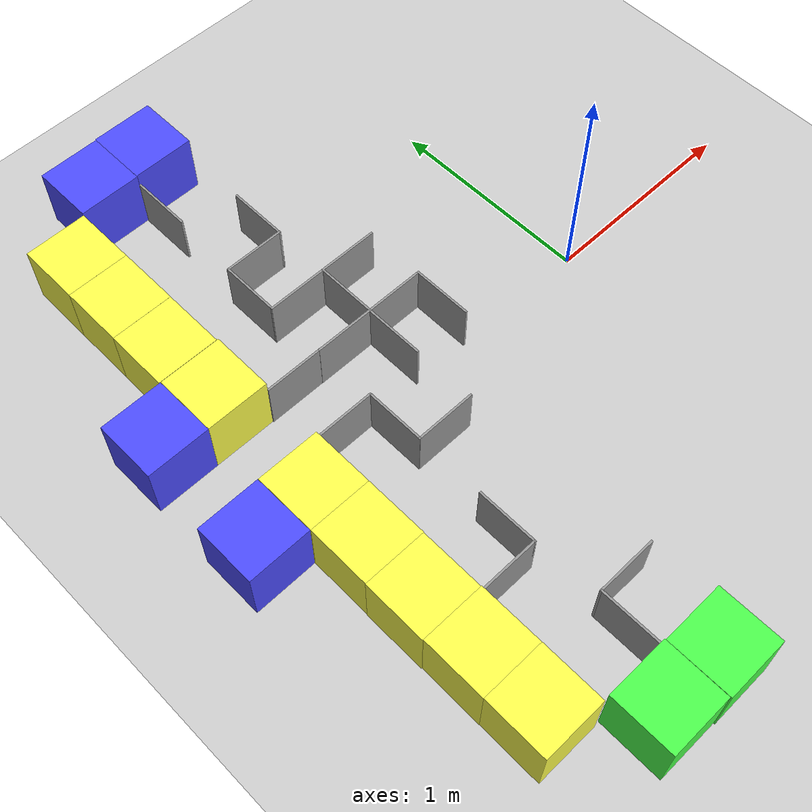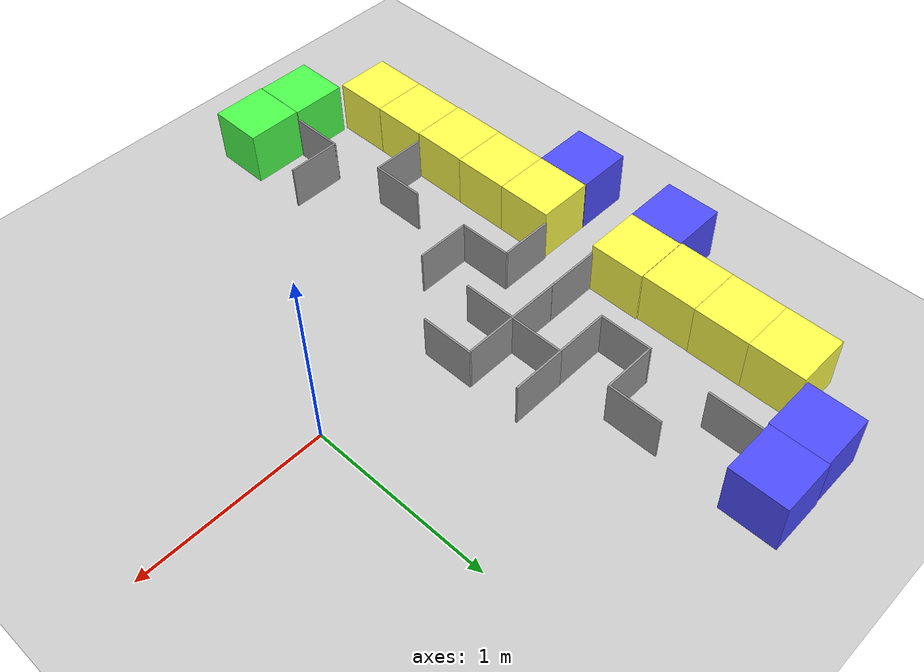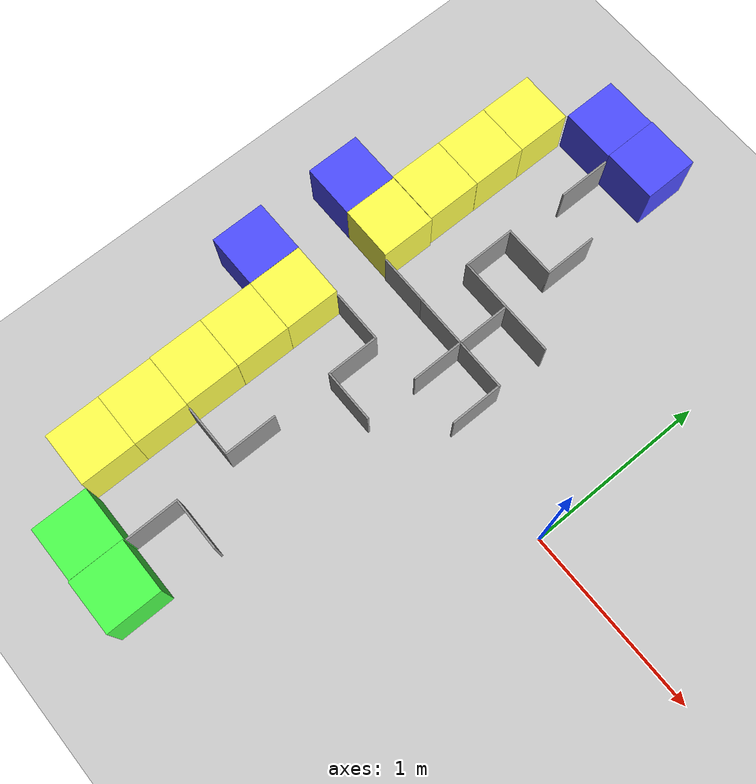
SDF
<sdf version="1.6">
 <world name="default">
  <model name="ground_plane">
   <static>1</static>
   <link name="link">
    <collision name="collision">
     <geometry><plane><normal>0 0 1</normal><size>100 100</size></plane></geometry>
     <surface><friction><ode><mu>100</mu><mu2>50</mu2></ode></friction></surface>
    </collision>
    <visual name="visual">
     <cast_shadows>0</cast_shadows>
     <geometry><plane><normal>0 0 1</normal><size>100 100</size></plane></geometry>
     <material>
      <script><uri>file://media/materials/scripts/gazebo.material</uri><name>Gazebo/Grey</name></script>
     </material>
    </visual>
   </link>
  </model>
  <model name="Box_Yellow">
   <link name="link_0">
    <inertial>
     <mass>1</mass>
     <inertia>
      <ixx>0.166667</ixx>
      <ixy>0</ixy>
      <ixz>0</ixz>
      <iyy>0.166667</iyy>
      <iyz>0</iyz>
      <izz>0.166667</izz>
     </inertia>
    </inertial>
    <visual name="visual">
     <geometry><box><size>0.3 0.3 0.3</size></box></geometry>
     <material>
      <lighting>1</lighting>
      <script><uri>file://media/materials/scripts/gazebo.material</uri><name>Gazebo/Grey</name></script>
      <ambient>1 1 0.3 1</ambient>
      <diffuse>0.7 0.7 0.7 1</diffuse>
      <specular>0.01 0.01 0.01 1</specular>
      <emissive>0 0 0 1</emissive>
      <shader type="vertex"><normal_map>__default__</normal_map></shader>
     </material>
    </visual>
    <collision name="collision">
     <geometry><box><size>0.3 0.3 0.3</size></box></geometry>
     <surface>
      <friction>
       <ode><mu>1</mu><mu2>1</mu2><fdir1>0 0 0</fdir1><slip1>0</slip1><slip2>0</slip2></ode>
       <torsional>
        <coefficient>1</coefficient>
        <patch_radius>0</patch_radius>
        <surface_radius>0</surface_radius>
        <use_patch_radius>1</use_patch_radius>
        <ode><slip>0</slip></ode>
       </torsional>
      </friction>
      <bounce><restitution_coefficient>0</restitution_coefficient><threshold>1e+06</threshold></bounce>
      <contact>
       <collide_without_contact>0</collide_without_contact>
       <collide_without_contact_bitmask>1</collide_without_contact_bitmask>
       <collide_bitmask>1</collide_bitmask>
       <ode>
        <soft_cfm>0</soft_cfm>
        <soft_erp>0.2</soft_erp>
        <kp>1e+13</kp>
        <kd>1</kd>
        <max_vel>0.01</max_vel>
        <min_depth>0</min_depth>
       </ode>
       <bullet>
        <split_impulse>1</split_impulse>
        <split_impulse_penetration_threshold>-0.01</split_impulse_penetration_threshold>
        <soft_cfm>0</soft_cfm>
        <soft_erp>0.2</soft_erp>
        <kp>1e+13</kp>
        <kd>1</kd>
       </bullet>
      </contact>
     </surface>
    </collision>
   </link>
   <static>0</static>
   <pose>-1.66342 -1.35871 0.149998 -7e-06 -5e-06 -0.002536</pose>
  </model>
  <model name="Box_Green_clone_6">
   <link name="link_0">
    <inertial>
     <mass>1</mass>
     <inertia>
      <ixx>0.166667</ixx>
      <ixy>0</ixy>
      <ixz>0</ixz>
      <iyy>0.166667</iyy>
      <iyz>0</iyz>
      <izz>0.166667</izz>
     </inertia>
    </inertial>
    <visual name="visual">
     <geometry><box><size>0.3 0.3 0.3</size></box></geometry>
     <material>
      <lighting>1</lighting>
      <script><uri>file://media/materials/scripts/gazebo.material</uri><name>Gazebo/Grey</name></script>
      <ambient>0.3 1 0.3 1</ambient>
      <diffuse>0.7 0.7 0.7 1</diffuse>
      <specular>0.01 0.01 0.01 1</specular>
      <emissive>0 0 0 1</emissive>
      <shader type="vertex"><normal_map>__default__</normal_map></shader>
     </material>
    </visual>
    <collision name="collision">
     <geometry><box><size>0.3 0.3 0.3</size></box></geometry>
     <surface>
      <friction>
       <ode><mu>1</mu><mu2>1</mu2><fdir1>0 0 0</fdir1><slip1>0</slip1><slip2>0</slip2></ode>
       <torsional>
        <coefficient>1</coefficient>
        <patch_radius>0</patch_radius>
        <surface_radius>0</surface_radius>
        <use_patch_radius>1</use_patch_radius>
        <ode><slip>0</slip></ode>
       </torsional>
      </friction>
      <bounce><restitution_coefficient>0</restitution_coefficient><threshold>1e+06</threshold></bounce>
      <contact>
       <collide_without_contact>0</collide_without_contact>
       <collide_without_contact_bitmask>1</collide_without_contact_bitmask>
       <collide_bitmask>1</collide_bitmask>
       <ode>
        <soft_cfm>0</soft_cfm>
        <soft_erp>0.2</soft_erp>
        <kp>1e+13</kp>
        <kd>1</kd>
        <max_vel>0.01</max_vel>
        <min_depth>0</min_depth>
       </ode>
       <bullet>
        <split_impulse>1</split_impulse>
        <split_impulse_penetration_threshold>-0.01</split_impulse_penetration_threshold>
        <soft_cfm>0</soft_cfm>
        <soft_erp>0.2</soft_erp>
        <kp>1e+13</kp>
        <kd>1</kd>
       </bullet>
      </contact>
     </surface>
    </collision>
   </link>
   <static>0</static>
   <pose>-1.03973 -1.6614 0.149998 6e-06 5e-06 -8.4e-05</pose>
  </model>
  <model name="Box_Yellow_clone">
   <link name="link_0">
    <inertial>
     <mass>1</mass>
     <inertia>
      <ixx>0.166667</ixx>
      <ixy>0</ixy>
      <ixz>0</ixz>
      <iyy>0.166667</iyy>
      <iyz>0</iyz>
      <izz>0.166667</izz>
     </inertia>
    </inertial>
    <visual name="visual">
     <geometry><box><size>0.3 0.3 0.3</size></box></geometry>
     <material>
      <lighting>1</lighting>
      <script><uri>file://media/materials/scripts/gazebo.material</uri><name>Gazebo/Grey</name></script>
      <ambient>1 1 0.3 1</ambient>
      <diffuse>0.7 0.7 0.7 1</diffuse>
      <specular>0.01 0.01 0.01 1</specular>
      <emissive>0 0 0 1</emissive>
      <shader type="vertex"><normal_map>__default__</normal_map></shader>
     </material>
    </visual>
    <collision name="collision">
     <geometry><box><size>0.3 0.3 0.3</size></box></geometry>
     <surface>
      <friction>
       <ode><mu>1</mu><mu2>1</mu2><fdir1>0 0 0</fdir1><slip1>0</slip1><slip2>0</slip2></ode>
       <torsional>
        <coefficient>1</coefficient>
        <patch_radius>0</patch_radius>
        <surface_radius>0</surface_radius>
        <use_patch_radius>1</use_patch_radius>
        <ode><slip>0</slip></ode>
       </torsional>
      </friction>
      <bounce><restitution_coefficient>0</restitution_coefficient><threshold>1e+06</threshold></bounce>
      <contact>
       <collide_without_contact>0</collide_without_contact>
       <collide_without_contact_bitmask>1</collide_without_contact_bitmask>
       <collide_bitmask>1</collide_bitmask>
       <ode>
        <soft_cfm>0</soft_cfm>
        <soft_erp>0.2</soft_erp>
        <kp>1e+13</kp>
        <kd>1</kd>
        <max_vel>0.01</max_vel>
        <min_depth>0</min_depth>
       </ode>
       <bullet>
        <split_impulse>1</split_impulse>
        <split_impulse_penetration_threshold>-0.01</split_impulse_penetration_threshold>
        <soft_cfm>0</soft_cfm>
        <soft_erp>0.2</soft_erp>
        <kp>1e+13</kp>
        <kd>1</kd>
       </bullet>
      </contact>
     </surface>
    </collision>
   </link>
   <static>0</static>
   <pose>-1.66308 -1.0587 0.15 0 -0 -0.002559</pose>
  </model>
  <model name="Box_Yellow_clone_0">
   <link name="link_0">
    <inertial>
     <mass>1</mass>
     <inertia>
      <ixx>0.166667</ixx>
      <ixy>0</ixy>
      <ixz>0</ixz>
      <iyy>0.166667</iyy>
      <iyz>0</iyz>
      <izz>0.166667</izz>
     </inertia>
    </inertial>
    <visual name="visual">
     <geometry><box><size>0.3 0.3 0.3</size></box></geometry>
     <material>
      <lighting>1</lighting>
      <script><uri>file://media/materials/scripts/gazebo.material</uri><name>Gazebo/Grey</name></script>
      <ambient>1 1 0.3 1</ambient>
      <diffuse>0.7 0.7 0.7 1</diffuse>
      <specular>0.01 0.01 0.01 1</specular>
      <emissive>0 0 0 1</emissive>
      <shader type="vertex"><normal_map>__default__</normal_map></shader>
     </material>
    </visual>
    <collision name="collision">
     <geometry><box><size>0.3 0.3 0.3</size></box></geometry>
     <surface>
      <friction>
       <ode><mu>1</mu><mu2>1</mu2><fdir1>0 0 0</fdir1><slip1>0</slip1><slip2>0</slip2></ode>
       <torsional>
        <coefficient>1</coefficient>
        <patch_radius>0</patch_radius>
        <surface_radius>0</surface_radius>
        <use_patch_radius>1</use_patch_radius>
        <ode><slip>0</slip></ode>
       </torsional>
      </friction>
      <bounce><restitution_coefficient>0</restitution_coefficient><threshold>1e+06</threshold></bounce>
      <contact>
       <collide_without_contact>0</collide_without_contact>
       <collide_without_contact_bitmask>1</collide_without_contact_bitmask>
       <collide_bitmask>1</collide_bitmask>
       <ode>
        <soft_cfm>0</soft_cfm>
        <soft_erp>0.2</soft_erp>
        <kp>1e+13</kp>
        <kd>1</kd>
        <max_vel>0.01</max_vel>
        <min_depth>0</min_depth>
       </ode>
       <bullet>
        <split_impulse>1</split_impulse>
        <split_impulse_penetration_threshold>-0.01</split_impulse_penetration_threshold>
        <soft_cfm>0</soft_cfm>
        <soft_erp>0.2</soft_erp>
        <kp>1e+13</kp>
        <kd>1</kd>
       </bullet>
      </contact>
     </surface>
    </collision>
   </link>
   <static>0</static>
   <pose>-1.66549 -0.758687 0.15 0 -0 -0.002585</pose>
  </model>
  <model name="Box_Yellow_clone_1">
   <link name="link_0">
    <inertial>
     <mass>1</mass>
     <inertia>
      <ixx>0.166667</ixx>
      <ixy>0</ixy>
      <ixz>0</ixz>
      <iyy>0.166667</iyy>
      <iyz>0</iyz>
      <izz>0.166667</izz>
     </inertia>
    </inertial>
    <visual name="visual">
     <geometry><box><size>0.3 0.3 0.3</size></box></geometry>
     <material>
      <lighting>1</lighting>
      <script><uri>file://media/materials/scripts/gazebo.material</uri><name>Gazebo/Grey</name></script>
      <ambient>1 1 0.3 1</ambient>
      <diffuse>0.7 0.7 0.7 1</diffuse>
      <specular>0.01 0.01 0.01 1</specular>
      <emissive>0 0 0 1</emissive>
      <shader type="vertex"><normal_map>__default__</normal_map></shader>
     </material>
    </visual>
    <collision name="collision">
     <geometry><box><size>0.3 0.3 0.3</size></box></geometry>
     <surface>
      <friction>
       <ode><mu>1</mu><mu2>1</mu2><fdir1>0 0 0</fdir1><slip1>0</slip1><slip2>0</slip2></ode>
       <torsional>
        <coefficient>1</coefficient>
        <patch_radius>0</patch_radius>
        <surface_radius>0</surface_radius>
        <use_patch_radius>1</use_patch_radius>
        <ode><slip>0</slip></ode>
       </torsional>
      </friction>
      <bounce><restitution_coefficient>0</restitution_coefficient><threshold>1e+06</threshold></bounce>
      <contact>
       <collide_without_contact>0</collide_without_contact>
       <collide_without_contact_bitmask>1</collide_without_contact_bitmask>
       <collide_bitmask>1</collide_bitmask>
       <ode>
        <soft_cfm>0</soft_cfm>
        <soft_erp>0.2</soft_erp>
        <kp>1e+13</kp>
        <kd>1</kd>
        <max_vel>0.01</max_vel>
        <min_depth>0</min_depth>
       </ode>
       <bullet>
        <split_impulse>1</split_impulse>
        <split_impulse_penetration_threshold>-0.01</split_impulse_penetration_threshold>
        <soft_cfm>0</soft_cfm>
        <soft_erp>0.2</soft_erp>
        <kp>1e+13</kp>
        <kd>1</kd>
       </bullet>
      </contact>
     </surface>
    </collision>
   </link>
   <static>0</static>
   <pose>-1.66306 -0.458669 0.15 0 0 -0.00269</pose>
  </model>
  <model name="Box_Yellow_clone_2">
   <link name="link_0">
    <inertial>
     <mass>1</mass>
     <inertia>
      <ixx>0.166667</ixx>
      <ixy>0</ixy>
      <ixz>0</ixz>
      <iyy>0.166667</iyy>
      <iyz>0</iyz>
      <izz>0.166667</izz>
     </inertia>
    </inertial>
    <visual name="visual">
     <geometry><box><size>0.3 0.3 0.3</size></box></geometry>
     <material>
      <lighting>1</lighting>
      <script><uri>file://media/materials/scripts/gazebo.material</uri><name>Gazebo/Grey</name></script>
      <ambient>1 1 0.3 1</ambient>
      <diffuse>0.7 0.7 0.7 1</diffuse>
      <specular>0.01 0.01 0.01 1</specular>
      <emissive>0 0 0 1</emissive>
      <shader type="vertex"><normal_map>__default__</normal_map></shader>
     </material>
    </visual>
    <collision name="collision">
     <geometry><box><size>0.3 0.3 0.3</size></box></geometry>
     <surface>
      <friction>
       <ode><mu>1</mu><mu2>1</mu2><fdir1>0 0 0</fdir1><slip1>0</slip1><slip2>0</slip2></ode>
       <torsional>
        <coefficient>1</coefficient>
        <patch_radius>0</patch_radius>
        <surface_radius>0</surface_radius>
        <use_patch_radius>1</use_patch_radius>
        <ode><slip>0</slip></ode>
       </torsional>
      </friction>
      <bounce><restitution_coefficient>0</restitution_coefficient><threshold>1e+06</threshold></bounce>
      <contact>
       <collide_without_contact>0</collide_without_contact>
       <collide_without_contact_bitmask>1</collide_without_contact_bitmask>
       <collide_bitmask>1</collide_bitmask>
       <ode>
        <soft_cfm>0</soft_cfm>
        <soft_erp>0.2</soft_erp>
        <kp>1e+13</kp>
        <kd>1</kd>
        <max_vel>0.01</max_vel>
        <min_depth>0</min_depth>
       </ode>
       <bullet>
        <split_impulse>1</split_impulse>
        <split_impulse_penetration_threshold>-0.01</split_impulse_penetration_threshold>
        <soft_cfm>0</soft_cfm>
        <soft_erp>0.2</soft_erp>
        <kp>1e+13</kp>
        <kd>1</kd>
       </bullet>
      </contact>
     </surface>
    </collision>
   </link>
   <static>0</static>
   <pose>-1.66229 -0.158625 0.150001 0 4e-06 -0.002442</pose>
  </model>
  <model name="Box_Yellow_clone_4">
   <link name="link_0">
    <inertial>
     <mass>1</mass>
     <inertia>
      <ixx>0.166667</ixx>
      <ixy>0</ixy>
      <ixz>0</ixz>
      <iyy>0.166667</iyy>
      <iyz>0</iyz>
      <izz>0.166667</izz>
     </inertia>
    </inertial>
    <visual name="visual">
     <geometry><box><size>0.3 0.3 0.3</size></box></geometry>
     <material>
      <lighting>1</lighting>
      <script><uri>file://media/materials/scripts/gazebo.material</uri><name>Gazebo/Grey</name></script>
      <ambient>1 1 0.3 1</ambient>
      <diffuse>0.7 0.7 0.7 1</diffuse>
      <specular>0.01 0.01 0.01 1</specular>
      <emissive>0 0 0 1</emissive>
      <shader type="vertex"><normal_map>__default__</normal_map></shader>
     </material>
    </visual>
    <collision name="collision">
     <geometry><box><size>0.3 0.3 0.3</size></box></geometry>
     <surface>
      <friction>
       <ode><mu>1</mu><mu2>1</mu2><fdir1>0 0 0</fdir1><slip1>0</slip1><slip2>0</slip2></ode>
       <torsional>
        <coefficient>1</coefficient>
        <patch_radius>0</patch_radius>
        <surface_radius>0</surface_radius>
        <use_patch_radius>1</use_patch_radius>
        <ode><slip>0</slip></ode>
       </torsional>
      </friction>
      <bounce><restitution_coefficient>0</restitution_coefficient><threshold>1e+06</threshold></bounce>
      <contact>
       <collide_without_contact>0</collide_without_contact>
       <collide_without_contact_bitmask>1</collide_without_contact_bitmask>
       <collide_bitmask>1</collide_bitmask>
       <ode>
        <soft_cfm>0</soft_cfm>
        <soft_erp>0.2</soft_erp>
        <kp>1e+13</kp>
        <kd>1</kd>
        <max_vel>0.01</max_vel>
        <min_depth>0</min_depth>
       </ode>
       <bullet>
        <split_impulse>1</split_impulse>
        <split_impulse_penetration_threshold>-0.01</split_impulse_penetration_threshold>
        <soft_cfm>0</soft_cfm>
        <soft_erp>0.2</soft_erp>
        <kp>1e+13</kp>
        <kd>1</kd>
       </bullet>
      </contact>
     </surface>
    </collision>
   </link>
   <static>0</static>
   <pose>-1.65698 0.443105 0.15 0 -0 -0.002244</pose>
  </model>
  <model name="Box_Yellow_clone_5">
   <link name="link_0">
    <inertial>
     <mass>1</mass>
     <inertia>
      <ixx>0.166667</ixx>
      <ixy>0</ixy>
      <ixz>0</ixz>
      <iyy>0.166667</iyy>
      <iyz>0</iyz>
      <izz>0.166667</izz>
     </inertia>
    </inertial>
    <visual name="visual">
     <geometry><box><size>0.3 0.3 0.3</size></box></geometry>
     <material>
      <lighting>1</lighting>
      <script><uri>file://media/materials/scripts/gazebo.material</uri><name>Gazebo/Grey</name></script>
      <ambient>1 1 0.3 1</ambient>
      <diffuse>0.7 0.7 0.7 1</diffuse>
      <specular>0.01 0.01 0.01 1</specular>
      <emissive>0 0 0 1</emissive>
      <shader type="vertex"><normal_map>__default__</normal_map></shader>
     </material>
    </visual>
    <collision name="collision">
     <geometry><box><size>0.3 0.3 0.3</size></box></geometry>
     <surface>
      <friction>
       <ode><mu>1</mu><mu2>1</mu2><fdir1>0 0 0</fdir1><slip1>0</slip1><slip2>0</slip2></ode>
       <torsional>
        <coefficient>1</coefficient>
        <patch_radius>0</patch_radius>
        <surface_radius>0</surface_radius>
        <use_patch_radius>1</use_patch_radius>
        <ode><slip>0</slip></ode>
       </torsional>
      </friction>
      <bounce><restitution_coefficient>0</restitution_coefficient><threshold>1e+06</threshold></bounce>
      <contact>
       <collide_without_contact>0</collide_without_contact>
       <collide_without_contact_bitmask>1</collide_without_contact_bitmask>
       <collide_bitmask>1</collide_bitmask>
       <ode>
        <soft_cfm>0</soft_cfm>
        <soft_erp>0.2</soft_erp>
        <kp>1e+13</kp>
        <kd>1</kd>
        <max_vel>0.01</max_vel>
        <min_depth>0</min_depth>
       </ode>
       <bullet>
        <split_impulse>1</split_impulse>
        <split_impulse_penetration_threshold>-0.01</split_impulse_penetration_threshold>
        <soft_cfm>0</soft_cfm>
        <soft_erp>0.2</soft_erp>
        <kp>1e+13</kp>
        <kd>1</kd>
       </bullet>
      </contact>
     </surface>
    </collision>
   </link>
   <static>0</static>
   <pose>-1.66402 0.744384 0.15 -0 -0 -0.002444</pose>
  </model>
  <model name="Box_Yellow_clone_6">
   <link name="link_0">
    <inertial>
     <mass>1</mass>
     <inertia>
      <ixx>0.166667</ixx>
      <ixy>0</ixy>
      <ixz>0</ixz>
      <iyy>0.166667</iyy>
      <iyz>0</iyz>
      <izz>0.166667</izz>
     </inertia>
    </inertial>
    <visual name="visual">
     <geometry><box><size>0.3 0.3 0.3</size></box></geometry>
     <material>
      <lighting>1</lighting>
      <script><uri>file://media/materials/scripts/gazebo.material</uri><name>Gazebo/Grey</name></script>
      <ambient>1 1 0.3 1</ambient>
      <diffuse>0.7 0.7 0.7 1</diffuse>
      <specular>0.01 0.01 0.01 1</specular>
      <emissive>0 0 0 1</emissive>
      <shader type="vertex"><normal_map>__default__</normal_map></shader>
     </material>
    </visual>
    <collision name="collision">
     <geometry><box><size>0.3 0.3 0.3</size></box></geometry>
     <surface>
      <friction>
       <ode><mu>1</mu><mu2>1</mu2><fdir1>0 0 0</fdir1><slip1>0</slip1><slip2>0</slip2></ode>
       <torsional>
        <coefficient>1</coefficient>
        <patch_radius>0</patch_radius>
        <surface_radius>0</surface_radius>
        <use_patch_radius>1</use_patch_radius>
        <ode><slip>0</slip></ode>
       </torsional>
      </friction>
      <bounce><restitution_coefficient>0</restitution_coefficient><threshold>1e+06</threshold></bounce>
      <contact>
       <collide_without_contact>0</collide_without_contact>
       <collide_without_contact_bitmask>1</collide_without_contact_bitmask>
       <collide_bitmask>1</collide_bitmask>
       <ode>
        <soft_cfm>0</soft_cfm>
        <soft_erp>0.2</soft_erp>
        <kp>1e+13</kp>
        <kd>1</kd>
        <max_vel>0.01</max_vel>
        <min_depth>0</min_depth>
       </ode>
       <bullet>
        <split_impulse>1</split_impulse>
        <split_impulse_penetration_threshold>-0.01</split_impulse_penetration_threshold>
        <soft_cfm>0</soft_cfm>
        <soft_erp>0.2</soft_erp>
        <kp>1e+13</kp>
        <kd>1</kd>
       </bullet>
      </contact>
     </surface>
    </collision>
   </link>
   <static>0</static>
   <pose>-1.66268 1.04457 0.150001 4e-06 -0 -0.001661</pose>
  </model>
  <model name="Box_Yellow_clone_7">
   <link name="link_0">
    <inertial>
     <mass>1</mass>
     <inertia>
      <ixx>0.166667</ixx>
      <ixy>0</ixy>
      <ixz>0</ixz>
      <iyy>0.166667</iyy>
      <iyz>0</iyz>
      <izz>0.166667</izz>
     </inertia>
    </inertial>
    <visual name="visual">
     <geometry><box><size>0.3 0.3 0.3</size></box></geometry>
     <material>
      <lighting>1</lighting>
      <script><uri>file://media/materials/scripts/gazebo.material</uri><name>Gazebo/Grey</name></script>
      <ambient>1 1 0.3 1</ambient>
      <diffuse>0.7 0.7 0.7 1</diffuse>
      <specular>0.01 0.01 0.01 1</specular>
      <emissive>0 0 0 1</emissive>
      <shader type="vertex"><normal_map>__default__</normal_map></shader>
     </material>
    </visual>
    <collision name="collision">
     <geometry><box><size>0.3 0.3 0.3</size></box></geometry>
     <surface>
      <friction>
       <ode><mu>1</mu><mu2>1</mu2><fdir1>0 0 0</fdir1><slip1>0</slip1><slip2>0</slip2></ode>
       <torsional>
        <coefficient>1</coefficient>
        <patch_radius>0</patch_radius>
        <surface_radius>0</surface_radius>
        <use_patch_radius>1</use_patch_radius>
        <ode><slip>0</slip></ode>
       </torsional>
      </friction>
      <bounce><restitution_coefficient>0</restitution_coefficient><threshold>1e+06</threshold></bounce>
      <contact>
       <collide_without_contact>0</collide_without_contact>
       <collide_without_contact_bitmask>1</collide_without_contact_bitmask>
       <collide_bitmask>1</collide_bitmask>
       <ode>
        <soft_cfm>0</soft_cfm>
        <soft_erp>0.2</soft_erp>
        <kp>1e+13</kp>
        <kd>1</kd>
        <max_vel>0.01</max_vel>
        <min_depth>0</min_depth>
       </ode>
       <bullet>
        <split_impulse>1</split_impulse>
        <split_impulse_penetration_threshold>-0.01</split_impulse_penetration_threshold>
        <soft_cfm>0</soft_cfm>
        <soft_erp>0.2</soft_erp>
        <kp>1e+13</kp>
        <kd>1</kd>
       </bullet>
      </contact>
     </surface>
    </collision>
   </link>
   <static>0</static>
   <pose>-1.66248 1.34462 0.15 0 0 -0.001634</pose>
  </model>
  <model name="Box_Blue_clone_6">
   <link name="link_0">
    <inertial>
     <mass>1</mass>
     <inertia>
      <ixx>0.166667</ixx>
      <ixy>0</ixy>
      <ixz>0</ixz>
      <iyy>0.166667</iyy>
      <iyz>0</iyz>
      <izz>0.166667</izz>
     </inertia>
    </inertial>
    <visual name="visual">
     <geometry><box><size>0.3 0.3 0.3</size></box></geometry>
     <material>
      <lighting>1</lighting>
      <script><uri>file://media/materials/scripts/gazebo.material</uri><name>Gazebo/Grey</name></script>
      <ambient>0.3 0.3 1 1</ambient>
      <diffuse>0.7 0.7 0.7 1</diffuse>
      <specular>0.01 0.01 0.01 1</specular>
      <emissive>0 0 0 1</emissive>
      <shader type="vertex"><normal_map>__default__</normal_map></shader>
     </material>
    </visual>
    <collision name="collision">
     <geometry><box><size>0.3 0.3 0.3</size></box></geometry>
     <surface>
      <friction>
       <ode><mu>1</mu><mu2>1</mu2><fdir1>0 0 0</fdir1><slip1>0</slip1><slip2>0</slip2></ode>
       <torsional>
        <coefficient>1</coefficient>
        <patch_radius>0</patch_radius>
        <surface_radius>0</surface_radius>
        <use_patch_radius>1</use_patch_radius>
        <ode><slip>0</slip></ode>
       </torsional>
      </friction>
      <bounce><restitution_coefficient>0</restitution_coefficient><threshold>1e+06</threshold></bounce>
      <contact>
       <collide_without_contact>0</collide_without_contact>
       <collide_without_contact_bitmask>1</collide_without_contact_bitmask>
       <collide_bitmask>1</collide_bitmask>
       <ode>
        <soft_cfm>0</soft_cfm>
        <soft_erp>0.2</soft_erp>
        <kp>1e+13</kp>
        <kd>1</kd>
        <max_vel>0.01</max_vel>
        <min_depth>0</min_depth>
       </ode>
       <bullet>
        <split_impulse>1</split_impulse>
        <split_impulse_penetration_threshold>-0.01</split_impulse_penetration_threshold>
        <soft_cfm>0</soft_cfm>
        <soft_erp>0.2</soft_erp>
        <kp>1e+13</kp>
        <kd>1</kd>
       </bullet>
      </contact>
     </surface>
    </collision>
   </link>
   <static>0</static>
   <pose>-1.05978 1.66049 0.15 0 -0 0.001403</pose>
  </model>
  <model name="Box_Blue_clone_7">
   <link name="link_0">
    <inertial>
     <mass>1</mass>
     <inertia>
      <ixx>0.166667</ixx>
      <ixy>0</ixy>
      <ixz>0</ixz>
      <iyy>0.166667</iyy>
      <iyz>0</iyz>
      <izz>0.166667</izz>
     </inertia>
    </inertial>
    <visual name="visual">
     <geometry><box><size>0.3 0.3 0.3</size></box></geometry>
     <material>
      <lighting>1</lighting>
      <script><uri>file://media/materials/scripts/gazebo.material</uri><name>Gazebo/Grey</name></script>
      <ambient>0.3 0.3 1 1</ambient>
      <diffuse>0.7 0.7 0.7 1</diffuse>
      <specular>0.01 0.01 0.01 1</specular>
      <emissive>0 0 0 1</emissive>
      <shader type="vertex"><normal_map>__default__</normal_map></shader>
     </material>
    </visual>
    <collision name="collision">
     <geometry><box><size>0.3 0.3 0.3</size></box></geometry>
     <surface>
      <friction>
       <ode><mu>1</mu><mu2>1</mu2><fdir1>0 0 0</fdir1><slip1>0</slip1><slip2>0</slip2></ode>
       <torsional>
        <coefficient>1</coefficient>
        <patch_radius>0</patch_radius>
        <surface_radius>0</surface_radius>
        <use_patch_radius>1</use_patch_radius>
        <ode><slip>0</slip></ode>
       </torsional>
      </friction>
      <bounce><restitution_coefficient>0</restitution_coefficient><threshold>1e+06</threshold></bounce>
      <contact>
       <collide_without_contact>0</collide_without_contact>
       <collide_without_contact_bitmask>1</collide_without_contact_bitmask>
       <collide_bitmask>1</collide_bitmask>
       <ode>
        <soft_cfm>0</soft_cfm>
        <soft_erp>0.2</soft_erp>
        <kp>1e+13</kp>
        <kd>1</kd>
        <max_vel>0.01</max_vel>
        <min_depth>0</min_depth>
       </ode>
       <bullet>
        <split_impulse>1</split_impulse>
        <split_impulse_penetration_threshold>-0.01</split_impulse_penetration_threshold>
        <soft_cfm>0</soft_cfm>
        <soft_erp>0.2</soft_erp>
        <kp>1e+13</kp>
        <kd>1</kd>
       </bullet>
      </contact>
     </surface>
    </collision>
   </link>
   <static>0</static>
   <pose>-1.3598 1.65522 0.15 0 -0 0.001322</pose>
  </model>
  <model name="Box_Green_clone_7">
   <link name="link_0">
    <inertial>
     <mass>1</mass>
     <inertia>
      <ixx>0.166667</ixx>
      <ixy>0</ixy>
      <ixz>0</ixz>
      <iyy>0.166667</iyy>
      <iyz>0</iyz>
      <izz>0.166667</izz>
     </inertia>
    </inertial>
    <visual name="visual">
     <geometry><box><size>0.3 0.3 0.3</size></box></geometry>
     <material>
      <lighting>1</lighting>
      <script><uri>file://media/materials/scripts/gazebo.material</uri><name>Gazebo/Grey</name></script>
      <ambient>0.3 1 0.3 1</ambient>
      <diffuse>0.7 0.7 0.7 1</diffuse>
      <specular>0.01 0.01 0.01 1</specular>
      <emissive>0 0 0 1</emissive>
      <shader type="vertex"><normal_map>__default__</normal_map></shader>
     </material>
    </visual>
    <collision name="collision">
     <geometry><box><size>0.3 0.3 0.3</size></box></geometry>
     <surface>
      <friction>
       <ode><mu>1</mu><mu2>1</mu2><fdir1>0 0 0</fdir1><slip1>0</slip1><slip2>0</slip2></ode>
       <torsional>
        <coefficient>1</coefficient>
        <patch_radius>0</patch_radius>
        <surface_radius>0</surface_radius>
        <use_patch_radius>1</use_patch_radius>
        <ode><slip>0</slip></ode>
       </torsional>
      </friction>
      <bounce><restitution_coefficient>0</restitution_coefficient><threshold>1e+06</threshold></bounce>
      <contact>
       <collide_without_contact>0</collide_without_contact>
       <collide_without_contact_bitmask>1</collide_without_contact_bitmask>
       <collide_bitmask>1</collide_bitmask>
       <ode>
        <soft_cfm>0</soft_cfm>
        <soft_erp>0.2</soft_erp>
        <kp>1e+13</kp>
        <kd>1</kd>
        <max_vel>0.01</max_vel>
        <min_depth>0</min_depth>
       </ode>
       <bullet>
        <split_impulse>1</split_impulse>
        <split_impulse_penetration_threshold>-0.01</split_impulse_penetration_threshold>
        <soft_cfm>0</soft_cfm>
        <soft_erp>0.2</soft_erp>
        <kp>1e+13</kp>
        <kd>1</kd>
       </bullet>
      </contact>
     </surface>
    </collision>
   </link>
   <static>0</static>
   <pose>-1.34025 -1.65501 0.15 0 0 -0.003639</pose>
  </model>
  <model name="Maze_L_RU">
   <pose>-1.36417 -0.767498 0 0 -0 0</pose>
   <link name="Wall_11">
    <collision name="Wall_11_Collision">
     <geometry><box><size>0.294 0.01 0.25</size></box></geometry>
     <pose>0 0 0.125 0 -0 0</pose>
    </collision>
    <visual name="Wall_11_Visual">
     <pose>0 0 0.125 0 -0 0</pose>
     <geometry><box><size>0.294 0.01 0.25</size></box></geometry>
     <material>
      <script><uri>file://media/materials/scripts/gazebo.material</uri><name>Gazebo/Grey</name></script>
      <ambient>1 1 1 1</ambient>
     </material>
     <meta><layer>0</layer></meta>
    </visual>
    <pose>0 -0.142 0 0 -0 0</pose>
   </link>
   <link name="Wall_12">
    <collision name="Wall_12_Collision">
     <geometry><box><size>0.294 0.01 0.25</size></box></geometry>
     <pose>0 0 0.125 0 -0 0</pose>
    </collision>
    <visual name="Wall_12_Visual">
     <pose>0 0 0.125 0 -0 0</pose>
     <geometry><box><size>0.294 0.01 0.25</size></box></geometry>
     <material>
      <script><uri>file://media/materials/scripts/gazebo.material</uri><name>Gazebo/Grey</name></script>
      <ambient>1 1 1 1</ambient>
     </material>
     <meta><layer>0</layer></meta>
    </visual>
    <pose>0.142 0 0 0 -0 1.5708</pose>
   </link>
   <static>1</static>
  </model>
  <model name="Maze_I_V">
   <pose>-1.35964 0.293545 0 0 -0 0</pose>
   <link name="Wall_0">
    <collision name="Wall_0_Collision">
     <geometry><box><size>0.294 0.01 0.25</size></box></geometry>
     <pose>0 0 0.125 0 -0 0</pose>
    </collision>
    <visual name="Wall_0_Visual">
     <pose>0 0 0.125 0 -0 0</pose>
     <geometry><box><size>0.294 0.01 0.25</size></box></geometry>
     <material>
      <script><uri>file://media/materials/scripts/gazebo.material</uri><name>Gazebo/Grey</name></script>
      <ambient>1 1 1 1</ambient>
     </material>
     <meta><layer>0</layer></meta>
    </visual>
   </link>
   <static>1</static>
  </model>
  <model name="Maze_L_LB">
   <pose>-0.798102 0.44384 0 0 -0 0</pose>
   <link name="Wall_0">
    <collision name="Wall_0_Collision">
     <geometry><box><size>0.294 0.01 0.25</size></box></geometry>
     <pose>0 0 0.125 0 -0 0</pose>
    </collision>
    <visual name="Wall_0_Visual">
     <pose>0 0 0.125 0 -0 0</pose>
     <geometry><box><size>0.294 0.01 0.25</size></box></geometry>
     <material>
      <script><uri>file://media/materials/scripts/gazebo.material</uri><name>Gazebo/Grey</name></script>
      <ambient>1 1 1 1</ambient>
     </material>
     <meta><layer>0</layer></meta>
    </visual>
    <pose>0 0.142 0 0 -0 0</pose>
   </link>
   <link name="Wall_2">
    <collision name="Wall_2_Collision">
     <geometry><box><size>0.294 0.01 0.25</size></box></geometry>
     <pose>0 0 0.125 0 -0 0</pose>
    </collision>
    <visual name="Wall_2_Visual">
     <pose>0 0 0.125 0 -0 0</pose>
     <geometry><box><size>0.294 0.01 0.25</size></box></geometry>
     <material>
      <script><uri>file://media/materials/scripts/gazebo.material</uri><name>Gazebo/Grey</name></script>
      <ambient>1 1 1 1</ambient>
     </material>
     <meta><layer>0</layer></meta>
    </visual>
    <pose>-0.142 0 0 0 0 -1.5708</pose>
   </link>
   <static>1</static>
  </model>
  <model name="Maze_L_LU">
   <pose>-1.36321 -0.14843 0 0 -0 0</pose>
   <link name="Wall_0">
    <collision name="Wall_0_Collision">
     <geometry><box><size>0.294 0.01 0.25</size></box></geometry>
     <pose>0 0 0.125 0 -0 0</pose>
    </collision>
    <visual name="Wall_0_Visual">
     <pose>0 0 0.125 0 -0 0</pose>
     <geometry><box><size>0.294 0.01 0.25</size></box></geometry>
     <material>
      <script><uri>file://media/materials/scripts/gazebo.material</uri><name>Gazebo/Grey</name></script>
      <ambient>1 1 1 1</ambient>
     </material>
     <meta><layer>0</layer></meta>
    </visual>
    <pose>0 0.142 0 0 -0 3.14159</pose>
   </link>
   <link name="Wall_2">
    <collision name="Wall_2_Collision">
     <geometry><box><size>0.294 0.01 0.25</size></box></geometry>
     <pose>0 0 0.125 0 -0 0</pose>
    </collision>
    <visual name="Wall_2_Visual">
     <pose>0 0 0.125 0 -0 0</pose>
     <geometry><box><size>0.294 0.01 0.25</size></box></geometry>
     <material>
      <script><uri>file://media/materials/scripts/gazebo.material</uri><name>Gazebo/Grey</name></script>
      <ambient>1 1 1 1</ambient>
     </material>
     <meta><layer>0</layer></meta>
    </visual>
    <pose>0.142 0 0 0 0 -1.5708</pose>
   </link>
   <static>1</static>
  </model>
  <model name="Maze_L_RB">
   <pose>-1.08633 0.727561 0 0 -0 0</pose>
   <link name="Wall_0">
    <collision name="Wall_0_Collision">
     <geometry><box><size>0.294 0.01 0.25</size></box></geometry>
     <pose>0 0 0.125 0 -0 0</pose>
    </collision>
    <visual name="Wall_0_Visual">
     <pose>0 0 0.125 0 -0 0</pose>
     <geometry><box><size>0.294 0.01 0.25</size></box></geometry>
     <material>
      <script><uri>file://media/materials/scripts/gazebo.material</uri><name>Gazebo/Grey</name></script>
      <ambient>1 1 1 1</ambient>
     </material>
     <meta><layer>0</layer></meta>
    </visual>
    <pose>0 -0.142 0 0 -0 0</pose>
   </link>
   <link name="Wall_2">
    <collision name="Wall_2_Collision">
     <geometry><box><size>0.294 0.01 0.25</size></box></geometry>
     <pose>0 0 0.125 0 -0 0</pose>
    </collision>
    <visual name="Wall_2_Visual">
     <pose>0 0 0.125 0 -0 0</pose>
     <geometry><box><size>0.294 0.01 0.25</size></box></geometry>
     <material>
      <script><uri>file://media/materials/scripts/gazebo.material</uri><name>Gazebo/Grey</name></script>
      <ambient>1 1 1 1</ambient>
     </material>
     <meta><layer>0</layer></meta>
    </visual>
    <pose>-0.142 0 0 0 -0 1.5708</pose>
   </link>
   <static>1</static>
  </model>
  <model name="Maze_I_H_clone_6">
   <pose>-1.20777 1.35352 0 0 -0 0</pose>
   <link name="Wall_0">
    <collision name="Wall_0_Collision">
     <geometry><box><size>0.294 0.01 0.25</size></box></geometry>
     <pose>0 0 0.125 0 -0 0</pose>
    </collision>
    <visual name="Wall_0_Visual">
     <pose>0 0 0.125 0 -0 0</pose>
     <geometry><box><size>0.294 0.01 0.25</size></box></geometry>
     <material>
      <script><uri>file://media/materials/scripts/gazebo.material</uri><name>Gazebo/Grey</name></script>
      <ambient>1 1 1 1</ambient>
     </material>
     <meta><layer>0</layer></meta>
    </visual>
    <pose>0 0 0 0 -0 1.5708</pose>
   </link>
   <static>1</static>
  </model>
  <model name="Maze_L_LB_clone_4">
   <pose>-1.04983 -1.35853 0 0 -0 0</pose>
   <link name="Wall_0">
    <collision name="Wall_0_Collision">
     <geometry><box><size>0.294 0.01 0.25</size></box></geometry>
     <pose>0 0 0.125 0 -0 0</pose>
    </collision>
    <visual name="Wall_0_Visual">
     <pose>0 0 0.125 0 -0 0</pose>
     <geometry><box><size>0.294 0.01 0.25</size></box></geometry>
     <material>
      <script><uri>file://media/materials/scripts/gazebo.material</uri><name>Gazebo/Grey</name></script>
      <ambient>1 1 1 1</ambient>
     </material>
     <meta><layer>0</layer></meta>
    </visual>
    <pose>0 0.142 0 0 -0 0</pose>
   </link>
   <link name="Wall_2">
    <collision name="Wall_2_Collision">
     <geometry><box><size>0.294 0.01 0.25</size></box></geometry>
     <pose>0 0 0.125 0 -0 0</pose>
    </collision>
    <visual name="Wall_2_Visual">
     <pose>0 0 0.125 0 -0 0</pose>
     <geometry><box><size>0.294 0.01 0.25</size></box></geometry>
     <material>
      <script><uri>file://media/materials/scripts/gazebo.material</uri><name>Gazebo/Grey</name></script>
      <ambient>1 1 1 1</ambient>
     </material>
     <meta><layer>0</layer></meta>
    </visual>
    <pose>-0.142 0 0 0 0 -1.5708</pose>
   </link>
   <static>1</static>
  </model>
  <model name="Maze_I_V_clone_4">
   <pose>-1.07712 -0.291215 0 0 -0 0</pose>
   <link name="Wall_0">
    <collision name="Wall_0_Collision">
     <geometry><box><size>0.294 0.01 0.25</size></box></geometry>
     <pose>0 0 0.125 0 -0 0</pose>
    </collision>
    <visual name="Wall_0_Visual">
     <pose>0 0 0.125 0 -0 0</pose>
     <geometry><box><size>0.294 0.01 0.25</size></box></geometry>
     <material>
      <script><uri>file://media/materials/scripts/gazebo.material</uri><name>Gazebo/Grey</name></script>
      <ambient>1 1 1 1</ambient>
     </material>
     <meta><layer>0</layer></meta>
    </visual>
   </link>
   <static>1</static>
  </model>
  <model name="Maze_L_LU_clone_2">
   <pose>-1.08312 0.150919 0 0 -0 0</pose>
   <link name="Wall_0">
    <collision name="Wall_0_Collision">
     <geometry><box><size>0.294 0.01 0.25</size></box></geometry>
     <pose>0 0 0.125 0 -0 0</pose>
    </collision>
    <visual name="Wall_0_Visual">
     <pose>0 0 0.125 0 -0 0</pose>
     <geometry><box><size>0.294 0.01 0.25</size></box></geometry>
     <material>
      <script><uri>file://media/materials/scripts/gazebo.material</uri><name>Gazebo/Grey</name></script>
      <ambient>1 1 1 1</ambient>
     </material>
     <meta><layer>0</layer></meta>
    </visual>
    <pose>0 0.142 0 0 -0 3.14159</pose>
   </link>
   <link name="Wall_2">
    <collision name="Wall_2_Collision">
     <geometry><box><size>0.294 0.01 0.25</size></box></geometry>
     <pose>0 0 0.125 0 -0 0</pose>
    </collision>
    <visual name="Wall_2_Visual">
     <pose>0 0 0.125 0 -0 0</pose>
     <geometry><box><size>0.294 0.01 0.25</size></box></geometry>
     <material>
      <script><uri>file://media/materials/scripts/gazebo.material</uri><name>Gazebo/Grey</name></script>
      <ambient>1 1 1 1</ambient>
     </material>
     <meta><layer>0</layer></meta>
    </visual>
    <pose>0.142 0 0 0 0 -1.5708</pose>
   </link>
   <static>1</static>
  </model>
  <model name="Maze_L_LU_clone_3">
   <pose>-0.799097 0.151299 0 0 -0 0</pose>
   <link name="Wall_0">
    <collision name="Wall_0_Collision">
     <geometry><box><size>0.294 0.01 0.25</size></box></geometry>
     <pose>0 0 0.125 0 -0 0</pose>
    </collision>
    <visual name="Wall_0_Visual">
     <pose>0 0 0.125 0 -0 0</pose>
     <geometry><box><size>0.294 0.01 0.25</size></box></geometry>
     <material>
      <script><uri>file://media/materials/scripts/gazebo.material</uri><name>Gazebo/Grey</name></script>
      <ambient>1 1 1 1</ambient>
     </material>
     <meta><layer>0</layer></meta>
    </visual>
    <pose>0 0.142 0 0 -0 3.14159</pose>
   </link>
   <link name="Wall_2">
    <collision name="Wall_2_Collision">
     <geometry><box><size>0.294 0.01 0.25</size></box></geometry>
     <pose>0 0 0.125 0 -0 0</pose>
    </collision>
    <visual name="Wall_2_Visual">
     <pose>0 0 0.125 0 -0 0</pose>
     <geometry><box><size>0.294 0.01 0.25</size></box></geometry>
     <material>
      <script><uri>file://media/materials/scripts/gazebo.material</uri><name>Gazebo/Grey</name></script>
      <ambient>1 1 1 1</ambient>
     </material>
     <meta><layer>0</layer></meta>
    </visual>
    <pose>0.142 0 0 0 0 -1.5708</pose>
   </link>
   <static>1</static>
  </model>
  <model name="Maze_L_RU_clone_2">
   <pose>-1.08127 1.01051 0 0 -0 0</pose>
   <link name="Wall_11">
    <collision name="Wall_11_Collision">
     <geometry><box><size>0.294 0.01 0.25</size></box></geometry>
     <pose>0 0 0.125 0 -0 0</pose>
    </collision>
    <visual name="Wall_11_Visual">
     <pose>0 0 0.125 0 -0 0</pose>
     <geometry><box><size>0.294 0.01 0.25</size></box></geometry>
     <material>
      <script><uri>file://media/materials/scripts/gazebo.material</uri><name>Gazebo/Grey</name></script>
      <ambient>1 1 1 1</ambient>
     </material>
     <meta><layer>0</layer></meta>
    </visual>
    <pose>0 -0.142 0 0 -0 0</pose>
   </link>
   <link name="Wall_12">
    <collision name="Wall_12_Collision">
     <geometry><box><size>0.294 0.01 0.25</size></box></geometry>
     <pose>0 0 0.125 0 -0 0</pose>
    </collision>
    <visual name="Wall_12_Visual">
     <pose>0 0 0.125 0 -0 0</pose>
     <geometry><box><size>0.294 0.01 0.25</size></box></geometry>
     <material>
      <script><uri>file://media/materials/scripts/gazebo.material</uri><name>Gazebo/Grey</name></script>
      <ambient>1 1 1 1</ambient>
     </material>
     <meta><layer>0</layer></meta>
    </visual>
    <pose>0.142 0 0 0 -0 1.5708</pose>
   </link>
   <static>1</static>
  </model>
  <model name="Box_Blue_clone_5_clone">
   <link name="link_0">
    <inertial>
     <mass>1</mass>
     <inertia>
      <ixx>0.166667</ixx>
      <ixy>0</ixy>
      <ixz>0</ixz>
      <iyy>0.166667</iyy>
      <iyz>0</iyz>
      <izz>0.166667</izz>
     </inertia>
    </inertial>
    <visual name="visual">
     <geometry><box><size>0.3 0.3 0.3</size></box></geometry>
     <material>
      <lighting>1</lighting>
      <script><uri>file://media/materials/scripts/gazebo.material</uri><name>Gazebo/Grey</name></script>
      <ambient>0.3 0.3 1 1</ambient>
      <diffuse>0.7 0.7 0.7 1</diffuse>
      <specular>0.01 0.01 0.01 1</specular>
      <emissive>0 0 0 1</emissive>
      <shader type="vertex"><normal_map>__default__</normal_map></shader>
     </material>
    </visual>
    <collision name="collision">
     <geometry><box><size>0.3 0.3 0.3</size></box></geometry>
     <surface>
      <friction>
       <ode><mu>1</mu><mu2>1</mu2><fdir1>0 0 0</fdir1><slip1>0</slip1><slip2>0</slip2></ode>
       <torsional>
        <coefficient>1</coefficient>
        <patch_radius>0</patch_radius>
        <surface_radius>0</surface_radius>
        <use_patch_radius>1</use_patch_radius>
        <ode><slip>0</slip></ode>
       </torsional>
      </friction>
      <bounce><restitution_coefficient>0</restitution_coefficient><threshold>1e+06</threshold></bounce>
      <contact>
       <collide_without_contact>0</collide_without_contact>
       <collide_without_contact_bitmask>1</collide_without_contact_bitmask>
       <collide_bitmask>1</collide_bitmask>
       <ode>
        <soft_cfm>0</soft_cfm>
        <soft_erp>0.2</soft_erp>
        <kp>1e+13</kp>
        <kd>1</kd>
        <max_vel>0.01</max_vel>
        <min_depth>0</min_depth>
       </ode>
       <bullet>
        <split_impulse>1</split_impulse>
        <split_impulse_penetration_threshold>-0.01</split_impulse_penetration_threshold>
        <soft_cfm>0</soft_cfm>
        <soft_erp>0.2</soft_erp>
        <kp>1e+13</kp>
        <kd>1</kd>
       </bullet>
      </contact>
     </surface>
    </collision>
   </link>
   <static>0</static>
   <pose>-1.95751 0.44283 0.15 0 -0 0.001263</pose>
  </model>
  <model name="Box_Blue_clone_5_clone_0">
   <link name="link_0">
    <inertial>
     <mass>1</mass>
     <inertia>
      <ixx>0.166667</ixx>
      <ixy>0</ixy>
      <ixz>0</ixz>
      <iyy>0.166667</iyy>
      <iyz>0</iyz>
      <izz>0.166667</izz>
     </inertia>
    </inertial>
    <visual name="visual">
     <geometry><box><size>0.3 0.3 0.3</size></box></geometry>
     <material>
      <lighting>1</lighting>
      <script><uri>file://media/materials/scripts/gazebo.material</uri><name>Gazebo/Grey</name></script>
      <ambient>0.3 0.3 1 1</ambient>
      <diffuse>0.7 0.7 0.7 1</diffuse>
      <specular>0.01 0.01 0.01 1</specular>
      <emissive>0 0 0 1</emissive>
      <shader type="vertex"><normal_map>__default__</normal_map></shader>
     </material>
    </visual>
    <collision name="collision">
     <geometry><box><size>0.3 0.3 0.3</size></box></geometry>
     <surface>
      <friction>
       <ode><mu>1</mu><mu2>1</mu2><fdir1>0 0 0</fdir1><slip1>0</slip1><slip2>0</slip2></ode>
       <torsional>
        <coefficient>1</coefficient>
        <patch_radius>0</patch_radius>
        <surface_radius>0</surface_radius>
        <use_patch_radius>1</use_patch_radius>
        <ode><slip>0</slip></ode>
       </torsional>
      </friction>
      <bounce><restitution_coefficient>0</restitution_coefficient><threshold>1e+06</threshold></bounce>
      <contact>
       <collide_without_contact>0</collide_without_contact>
       <collide_without_contact_bitmask>1</collide_without_contact_bitmask>
       <collide_bitmask>1</collide_bitmask>
       <ode>
        <soft_cfm>0</soft_cfm>
        <soft_erp>0.2</soft_erp>
        <kp>1e+13</kp>
        <kd>1</kd>
        <max_vel>0.01</max_vel>
        <min_depth>0</min_depth>
       </ode>
       <bullet>
        <split_impulse>1</split_impulse>
        <split_impulse_penetration_threshold>-0.01</split_impulse_penetration_threshold>
        <soft_cfm>0</soft_cfm>
        <soft_erp>0.2</soft_erp>
        <kp>1e+13</kp>
        <kd>1</kd>
       </bullet>
      </contact>
     </surface>
    </collision>
   </link>
   <static>0</static>
   <pose>-1.96331 -0.158069 0.15 0 -0 0.001446</pose>
  </model>
 </world>
</sdf>
